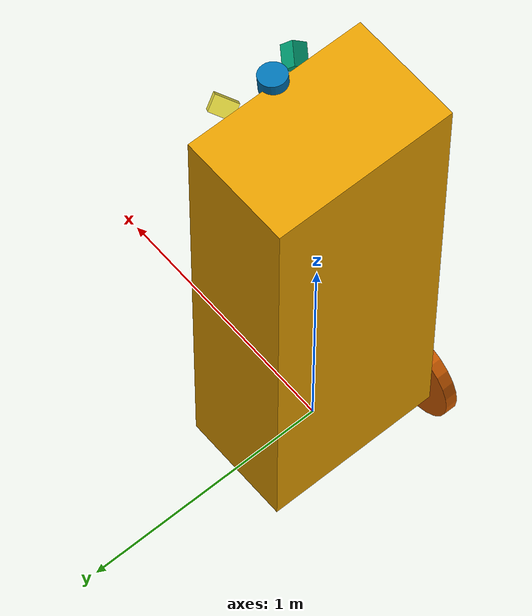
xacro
<?xml version="1.0"?>
<robot xmlns:xacro = "http://www.ros.org/wiki/xacro" name = "navvis">
  <link name ="base">
    <visual>
      <origin xyz="0.0 0.0 0.96" rpy="0.0 0.0 0.0" />
      <geometry>
        <box size="0.45 0.72 1.92" />
      </geometry>
    </visual>
    <collision>
      <origin xyz="0.0 0.0 0.96" rpy="0.0 0.0 0.0" />
      <geometry>
    <box size="0.45 0.72 1.92" />
      </geometry>
    </collision>
  </link>
  <link name ="laser_vert_bottom">
    <visual>
      <origin xyz="0.0 0.0 0.0" rpy="0.0 0.0 0.0" />
      <geometry>
        <box size="0.062 0.062 0.087" />
      </geometry>
    </visual>
    <collision>
      <origin xyz="0.0 0.0 0.0" rpy="0.0 0.0 0.0" />
      <geometry>
    <box size="0.062 0.062 0.087" />
      </geometry>
    </collision>
  </link>
<joint name="base_laser_vert_bottom_joint" type="fixed">
    <parent link="base" />
    <child link="laser_vert_bottom" />
    <origin xyz="0.3158 -0.0021 0.5100" rpy="3.1355 -1.3045 0.0025" />
  </joint>
  <link name ="laser_vert_top_right">
    <visual>
      <origin xyz="0.0 0.0 0.0" rpy="0.0 0.0 0.0" />
      <geometry>
        <box size="0.062 0.062 0.087" />
      </geometry>
    </visual>
    <collision>
      <origin xyz="0.0 0.0 0.0" rpy="0.0 0.0 0.0" />
      <geometry>
    <box size="0.062 0.062 0.087" />
      </geometry>
    </collision>
  </link>
  <joint name="base_laser_vert_top_right_joint" type="fixed">
    <parent link="base" />
    <child link="laser_vert_top_right" />
    <origin xyz="0.2978 -0.1450 1.8451" rpy="-1.1760 0.6313 -1.9377" />
  </joint>
  <link name ="laser_vert_top_left">
    <visual>
      <origin xyz="0.0 0.0 0.0" rpy="0.0 0.0 0.0" />
      <geometry>
        <box size="0.062 0.062 0.087" />
      </geometry>
    </visual>
    <collision>
      <origin xyz="0.0 0.0 0.0" rpy="0.0 0.0 0.0" />
      <geometry>
    <box size="0.062 0.062 0.087" />
      </geometry>
    </collision>
  </link>
  <joint name="base_laser_vert_top_left_joint" type="fixed">
    <parent link="base" />
    <child link="laser_vert_top_left" />
    <origin xyz="0.2997 0.1531 1.8443" rpy="1.1780 0.6198 1.9560" />
  </joint>
  <link name ="laser_horiz">
    <visual>
      <origin xyz="0.0 0.0 0.0" rpy="0.0 0.0 0.0" />
      <geometry>
        <cylinder radius="0.052" length="0.072" />
      </geometry>
    </visual>
    <collision>
      <origin xyz="0.0 0.0 0.0" rpy="0.0 0.0 0.0" />
      <geometry>
    <cylinder radius="0.052" length="0.072" />
      </geometry>
    </collision>
  </link>
  <joint name="base_laser_horiz_joint" type="fixed">
    <parent link="base" />
    <child link="laser_horiz" />
    <origin xyz="0.2325 0.0001 1.9201" rpy="-0.0012 0.1146 -0.0015" />
  </joint>
<xacro:macro name="xacro_name" params="side reflect">
 <link name ="wheel_left">
    <visual>
      <origin xyz="0.0 0.0 0.0" rpy="0.0 0.0 0.0" />
      <geometry>
        <cylinder radius="0.2" length="0.05" />
      </geometry>
    </visual>
    <collision>
      <origin xyz="0.0 0.0 0.0" rpy="0.0 0.0 0.0" />
      <geometry>
    <cylinder radius="0.2" length="0.05" />
      </geometry>
    </collision>
  </link>
  <joint name="base_wheel_left" type="fixed">
    <parent link="base" />
    <child link="wheel_left" />
    <origin xyz="-0.10 0.4 0.0" rpy="-1.57 0.0 0.0" />
  </joint>
</xacro:macro>
<xacro:macro name="xacro_name" params="side reflect">
 <link name ="wheel_right">
    <visual>
      <origin xyz="0.0 0.0 0.0" rpy="0.0 0.0 0.0" />
      <geometry>
        <cylinder radius="0.2" length="0.05" />
      </geometry>
    </visual>
    <collision>
      <origin xyz="0.0 0.0 0.0" rpy="0.0 0.0 0.0" />
      <geometry>
    <cylinder radius="0.2" length="0.05" />
      </geometry>
    </collision>
  </link>
  <joint name="base_wheel_right" type="fixed">
    <parent link="base" />
    <child link="wheel_right" />
    <origin xyz="-0.10 -0.4 0.0" rpy= "-1.57 0.0 0.0" />
  </joint>
</xacro:macro>
<xacro:xacro_name side="left" reflect="1"/>
</robot>
